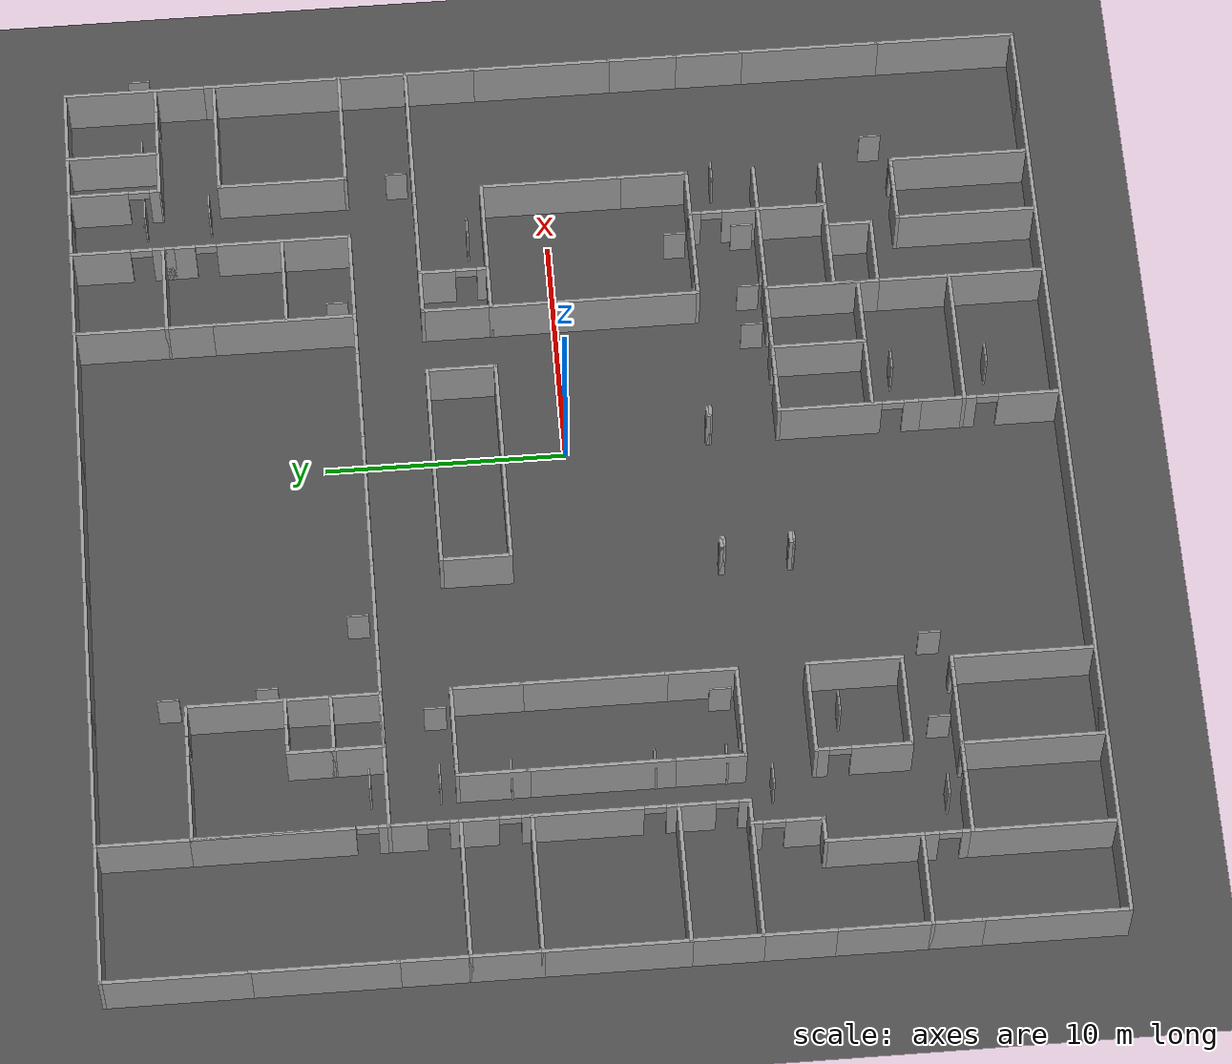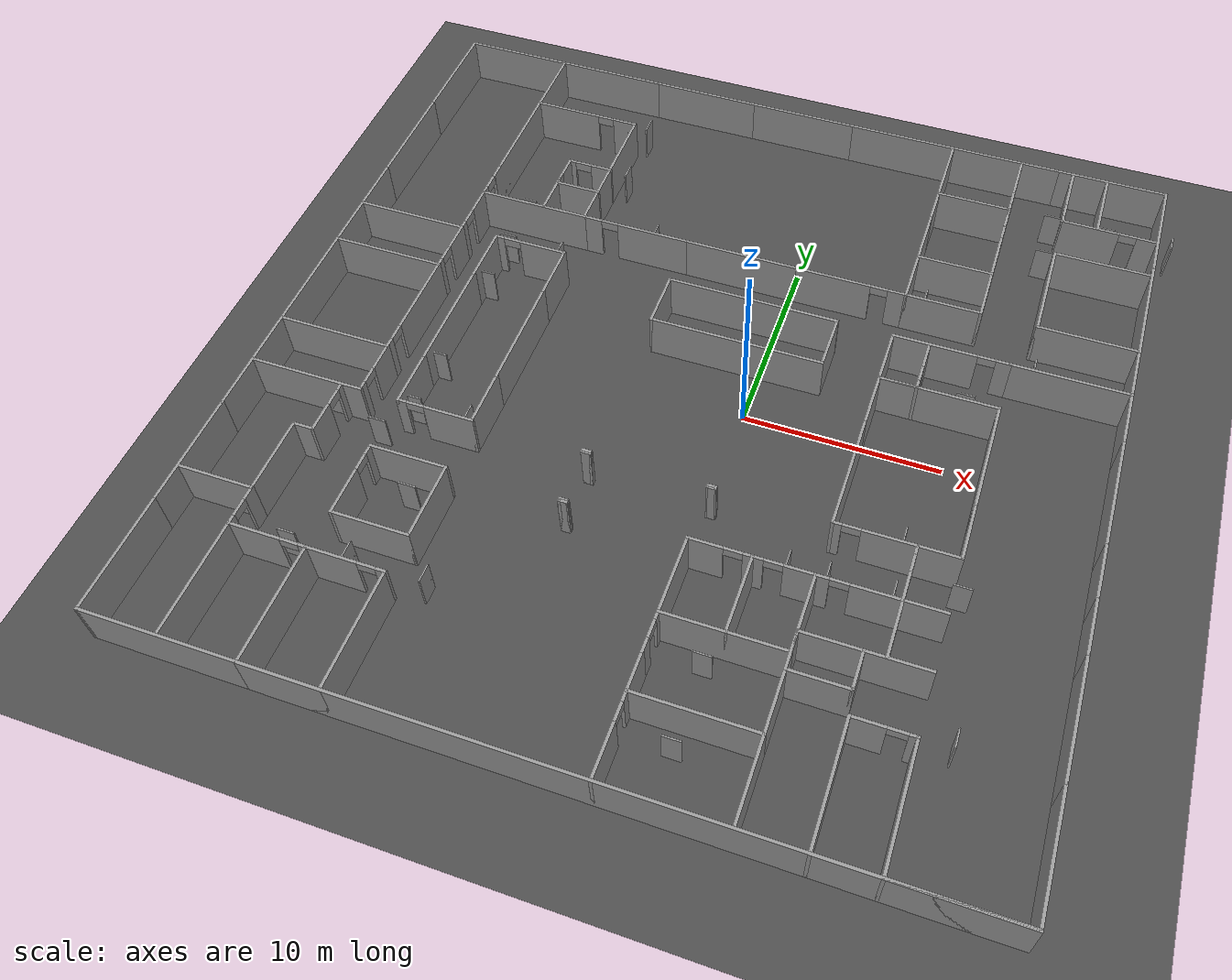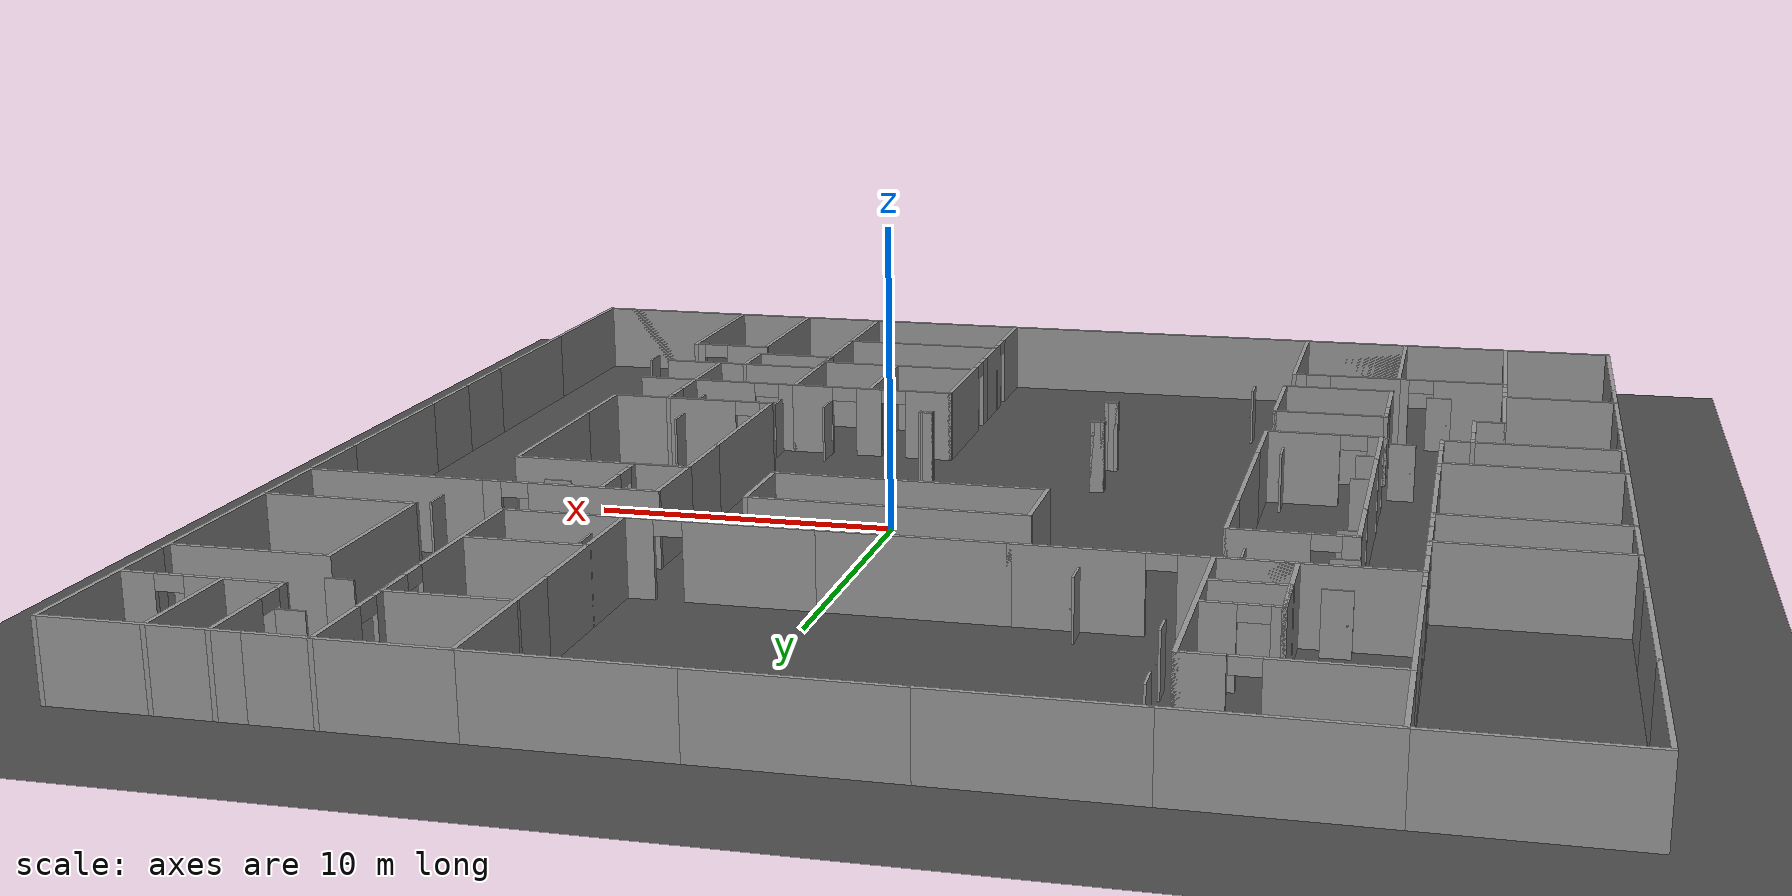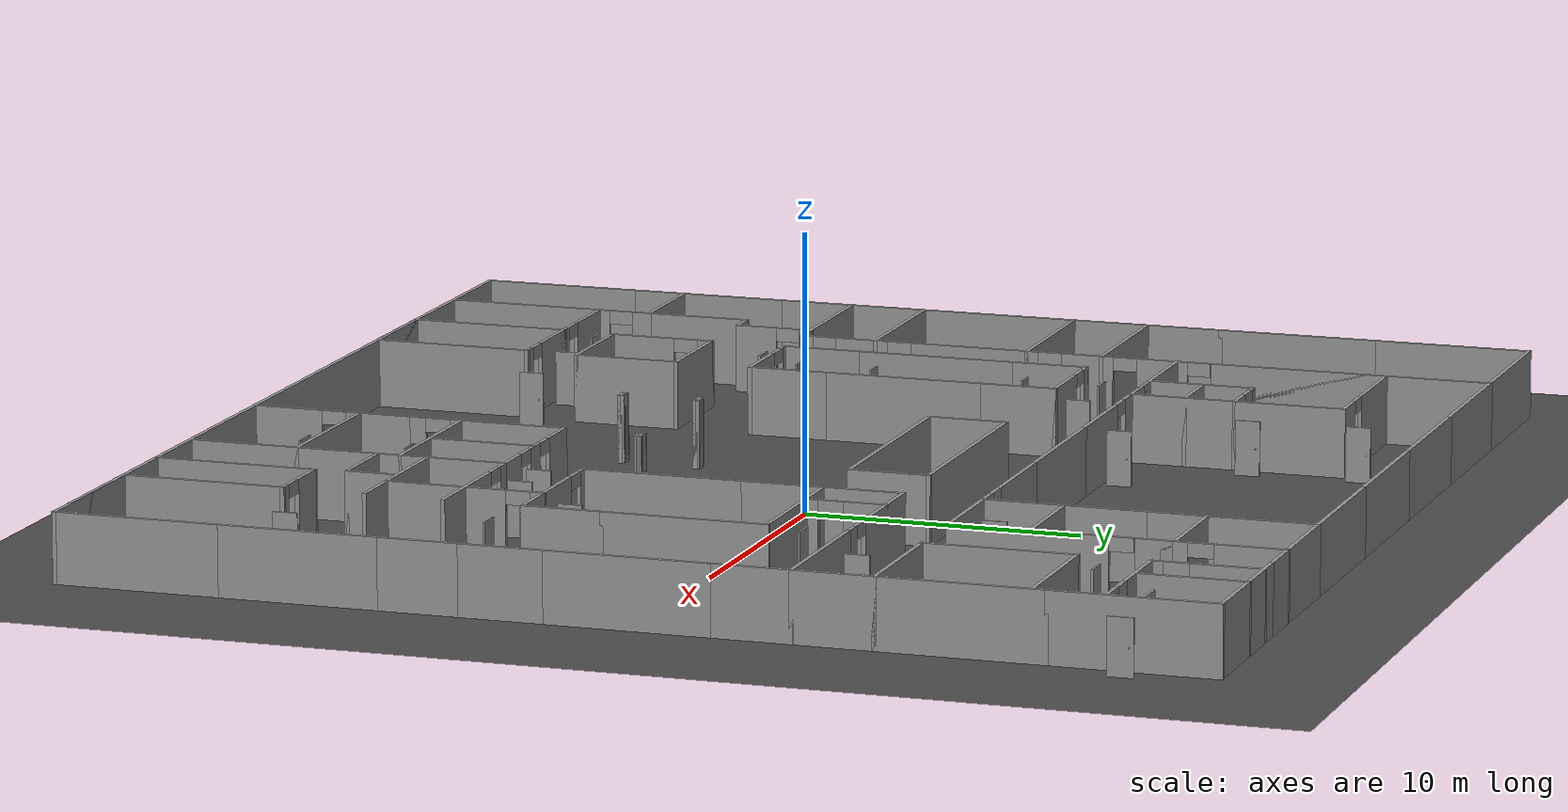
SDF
<sdf version="1.6">
 <world name="default">
  <light name="sun" type="directional">
   <pose>0 0 10 0 -0 0</pose>
   <diffuse>0.8 0.8 0.8 1</diffuse>
   <specular>0.2 0.2 0.2 1</specular>
   <attenuation>
    <range>1000</range>
    <constant>0.9</constant>
    <linear>0.01</linear>
    <quadratic>0.001</quadratic>
   </attenuation>
   <direction>-0.5 0.1 -0.9</direction>
  </light>
  <model name="ground_plane">
   <static>1</static>
   <link name="link">
    <collision name="collision">
     <geometry><plane><normal>0 0 1</normal><size>100 100</size></plane></geometry>
     <surface>
      <contact><collide_bitmask>65535</collide_bitmask></contact>
      <friction><ode><mu>100</mu><mu2>50</mu2></ode></friction>
     </surface>
    </collision>
    <visual name="visual">
     <cast_shadows>0</cast_shadows>
     <geometry><plane><normal>0 0 1</normal><size>100 100</size></plane></geometry>
     <material>
      <ambient>0.3 0.3 0.3 1</ambient>
      <diffuse>0.3 0.3 0.3 1</diffuse>
      <specular>0.01 0.01 0.01 1</specular>
      <emissive>0 0 0 1</emissive>
     </material>
    </visual>
   </link>
  </model>
  <gravity>0 0 -9.8</gravity>
  <magnetic_field>6e-06 2.3e-05 -4.2e-05</magnetic_field>
  <atmosphere type="adiabatic"/>
  <physics name="default_physics" default="0" type="ode">
   <max_step_size>0.001</max_step_size>
   <real_time_factor>0.2</real_time_factor>
   <real_time_update_rate>200</real_time_update_rate>
  </physics>
  <scene><ambient>0.4 0.4 0.4 1</ambient><background>0.7 0.7 0.7 1</background><shadows>1</shadows></scene>
  <spherical_coordinates>
   <surface_model>EARTH_WGS84</surface_model>
   <latitude_deg>0</latitude_deg>
   <longitude_deg>0</longitude_deg>
   <elevation>0</elevation>
   <heading_deg>0</heading_deg>
  </spherical_coordinates>
  <plugin name="puppeteer" filename="libpuppeteer.so">
   <building_name>building</building_name>
   <robot_name>jackal</robot_name>
  </plugin>
  <include><name>building</name><uri>model://myhal_V3</uri></include>
  <model name="CAM_1_-1.000000_-1.000000_8.000000_-2.000000_14.000000">
   <pose>8.000000 -2.000000 14.000000 0.000000 -0.000000 0.000000</pose>
   <static>true</static>
   <link name="CAM_1_-1.000000_-1.000000_8.000000_-2.000000_14.000000_link">
    <sensor name="CAM_1_-1.000000_-1.000000_8.000000_-2.000000_14.000000" type="camera">
     <camera>
      <horizontal_fov>1.047</horizontal_fov>
      <image><width>1920</width><height>1080</height></image>
      <clip><near>0.1</near><far>100</far></clip>
     </camera>
     <plugin name="camera_controller" filename="libcamera_controller.so">
      <filepath>/home/hth/Deep-Collison-Checker/Data/Simulation_v2/simulated_runs/2022-06-30-14-33-47/logs-2022-06-30-14-33-47/videos/CAM_1_-1.000000_-1.000000_8.000000_-2.000000_14.000000/</filepath>
     </plugin>
     <always_on>1</always_on>
     <update_rate>60</update_rate>
    </sensor>
   </link>
  </model>
  <include>
   <name>door_0</name>
   <pose>-10.987250 16.475000 1.000000 0.000000 -0.000000 1.571000</pose>
   <uri>model://simple_door2</uri>
  </include>
  <include>
   <name>door_1</name>
   <pose>-14.624989 9.030960 1.000000 0.000000 -0.000000 -3.141185</pose>
   <uri>model://simple_door2</uri>
  </include>
  <include>
   <name>door_2</name>
   <pose>-10.775058 12.475000 1.000000 0.000000 -0.000000 1.571000</pose>
   <uri>model://simple_door2</uri>
  </include>
  <include>
   <name>door_3</name>
   <pose>-7.761390 8.625000 1.000000 0.000000 -0.000000 1.571000</pose>
   <uri>model://simple_door2</uri>
  </include>
  <include>
   <name>door_4</name>
   <pose>6.935080 8.625000 1.000000 0.000000 -0.000000 1.571000</pose>
   <uri>model://simple_door2</uri>
  </include>
  <include>
   <name>door_5</name>
   <pose>12.624992 14.208450 1.000000 0.000000 -0.000000 -3.141185</pose>
   <uri>model://simple_door2</uri>
  </include>
  <include>
   <name>door_6</name>
   <pose>12.625004 16.932710 1.000000 0.000000 -0.000000 -3.141185</pose>
   <uri>model://simple_door2</uri>
  </include>
  <include>
   <name>door_7</name>
   <pose>18.478948 16.484045 1.000000 0.000000 -0.000000 1.571000</pose>
   <uri>model://simple_door2</uri>
  </include>
  <include>
   <name>door_8</name>
   <pose>15.475004 16.925590 1.000000 0.000000 -0.000000 -3.141185</pose>
   <uri>model://simple_door2</uri>
  </include>
  <include>
   <name>door_9</name>
   <pose>-14.625002 6.214056 1.000000 0.000000 -0.000000 -3.141185</pose>
   <uri>model://simple_door2</uri>
  </include>
  <include>
   <name>door_10</name>
   <pose>-14.625002 3.346128 1.000000 0.000000 -0.000000 -3.141185</pose>
   <uri>model://simple_door2</uri>
  </include>
  <include>
   <name>door_11</name>
   <pose>-14.625007 -2.443840 1.000000 0.000000 -0.000000 -3.141185</pose>
   <uri>model://simple_door2</uri>
  </include>
  <include>
   <name>door_12</name>
   <pose>-14.625002 -5.329808 1.000000 0.000000 -0.000000 -3.141185</pose>
   <uri>model://simple_door2</uri>
  </include>
  <include>
   <name>door_13</name>
   <pose>-15.625002 -7.097462 1.000000 0.000000 -0.000000 -3.141185</pose>
   <uri>model://simple_door2</uri>
  </include>
  <include>
   <name>door_14</name>
   <pose>-14.061730 -14.474920 1.000000 0.000000 -0.000000 1.571000</pose>
   <uri>model://simple_door2</uri>
  </include>
  <include>
   <name>door_15</name>
   <pose>-10.281770 -14.475003 1.000000 0.000000 -0.000000 1.571000</pose>
   <uri>model://simple_door2</uri>
  </include>
  <include>
   <name>door_16</name>
   <pose>-12.150050 5.775003 1.000000 0.000000 -0.000000 1.571000</pose>
   <uri>model://simple_door2</uri>
  </include>
  <include>
   <name>door_17</name>
   <pose>-12.167990 -5.775000 1.000000 0.000000 -0.000000 1.571000</pose>
   <uri>model://simple_door2</uri>
  </include>
  <include>
   <name>door_18</name>
   <pose>-16.625004 -14.047594 1.000000 0.000000 -0.000000 -3.141185</pose>
   <uri>model://simple_door2</uri>
  </include>
  <include>
   <name>door_19</name>
   <pose>-12.624997 -10.048217 1.000000 0.000000 -0.000000 -3.141185</pose>
   <uri>model://simple_door2</uri>
  </include>
  <include>
   <name>door_20</name>
   <pose>13.031310 5.774995 1.000000 0.000000 -0.000000 1.571000</pose>
   <uri>model://simple_door2</uri>
  </include>
  <include>
   <name>door_21</name>
   <pose>10.625002 3.385427 1.000000 0.000000 -0.000000 -3.141185</pose>
   <uri>model://simple_door2</uri>
  </include>
  <include>
   <name>door_22</name>
   <pose>9.193120 -5.774995 1.000000 0.000000 -0.000000 1.571000</pose>
   <uri>model://simple_door2</uri>
  </include>
  <include>
   <name>door_23</name>
   <pose>2.924993 -13.796720 1.000000 0.000000 -0.000000 -3.141185</pose>
   <uri>model://simple_door2</uri>
  </include>
  <include>
   <name>door_24</name>
   <pose>2.925000 -17.742519 1.000000 0.000000 -0.000000 -3.141185</pose>
   <uri>model://simple_door2</uri>
  </include>
  <include>
   <name>door_25</name>
   <pose>4.583714 -8.625000 1.000000 0.000000 -0.000000 1.571000</pose>
   <uri>model://simple_door2</uri>
  </include>
  <include>
   <name>door_26</name>
   <pose>6.431060 -8.625000 1.000000 0.000000 -0.000000 1.571000</pose>
   <uri>model://simple_door2</uri>
  </include>
  <include>
   <name>door_27</name>
   <pose>9.399440 -8.625000 1.000000 0.000000 -0.000000 1.571000</pose>
   <uri>model://simple_door2</uri>
  </include>
  <include>
   <name>door_28</name>
   <pose>13.352706 -14.475002 1.000000 0.000000 -0.000000 1.571000</pose>
   <uri>model://simple_door2</uri>
  </include>
  <include>
   <name>door_29</name>
   <pose>12.624998 -7.129598 1.000000 0.000000 -0.000000 -3.141185</pose>
   <uri>model://simple_door2</uri>
  </include>
 </world>
</sdf>

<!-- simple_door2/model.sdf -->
<sdf version='1.6'>
  <model name='simple_door2'>
    <link name='link'>
      <self_collide>0</self_collide>
      <enable_wind>0</enable_wind>
      <kinematic>0</kinematic>
      <pose frame=''>0.45 0 -0 0 -0 0</pose>
      <gravity>0</gravity>
      <visual name='visual'>
        <geometry>
          <box>
            <size>0.9 0.075 2</size>
          </box>
        </geometry>
        <material>
          <script>
            <name>Gazebo/Grey</name>
            <uri>file://media/materials/scripts/gazebo.material</uri>
          </script>
          <shader type='pixel'>
            <normal_map>__default__</normal_map>
          </shader>
          <ambient>0.3 0.3 0.3 1</ambient>
          <diffuse>0.7 0.7 0.7 1</diffuse>
          <specular>0.01 0.01 0.01 1</specular>
          <emissive>0 0 0 1</emissive>
        </material>
        <pose frame=''>0 0 0 0 -0 0</pose>
        <transparency>0</transparency>
        <cast_shadows>1</cast_shadows>
      </visual>
      <collision name='collision'>
        <laser_retro>0</laser_retro>
        <max_contacts>10</max_contacts>
        <pose frame=''>0 0 0 0 -0 0</pose>
        <geometry>
          <box>
            <size>0.9 0.075 2</size>
          </box>
        </geometry>
      </collision>

    </link>
    <link name='link_2'>
      <pose frame=''>0.750001 -0.0525 -0 1.57 6e-06 0</pose>
      <gravity>0</gravity>
      <self_collide>0</self_collide>
      <kinematic>0</kinematic>
      <enable_wind>0</enable_wind>
      <visual name='visual'>
        <pose frame=''>0 0 0 0 -0 0</pose>
        <geometry>
          <cylinder>
            <radius>0.02</radius>
            <length>0.03</length>
          </cylinder>
        </geometry>
        <material>
          <lighting>1</lighting>
          <script>
            <uri>file://media/materials/scripts/gazebo.material</uri>
            <name>Gazebo/Grey</name>
          </script>
          <shader type='pixel'>
            <normal_map>__default__</normal_map>
          </shader>
          <ambient>0.3 0.3 0.3 1</ambient>
          <diffuse>0.7 0.7 0.7 1</diffuse>
          <specular>0.01 0.01 0.01 1</specular>
          <emissive>0 0 0 1</emissive>
        </material>
        <transparency>0</transparency>
        <cast_shadows>1</cast_shadows>
      </visual>
       <collision name='collision'>
			<laser_retro>0</laser_retro>
			<max_contacts>10</max_contacts>
			<pose frame=''>0 0 0 0 -0 0</pose>
			<geometry>
			  <cylinder>
				<radius>0.02</radius>
				<length>0.03</length>
			  </cylinder>
			</geometry>
        </collision>

    </link>
    <link name='link_3'>
      <pose frame=''>0.750001 -0.0825 2.4e-05 -6.1e-05 6e-06 0.010426</pose>
      <gravity>0</gravity>
      <self_collide>0</self_collide>
      <kinematic>0</kinematic>
      <enable_wind>0</enable_wind>
      <visual name='visual'>
        <pose frame=''>0 0 0 0 -0 0</pose>
        <geometry>
          <sphere>
            <radius>0.025</radius>
          </sphere>
        </geometry>
        <material>
          <lighting>1</lighting>
          <script>
            <uri>file://media/materials/scripts/gazebo.material</uri>
            <name>Gazebo/Grey</name>
          </script>
          <shader type='pixel'>
            <normal_map>__default__</normal_map>
          </shader>
          <ambient>0.3 0.3 0.3 1</ambient>
          <diffuse>0.7 0.7 0.7 1</diffuse>
          <specular>0.01 0.01 0.01 1</specular>
          <emissive>0 0 0 1</emissive>
        </material>
        <transparency>0</transparency>
        <cast_shadows>1</cast_shadows>
      </visual>
      <collision name='collision'>
        <laser_retro>0</laser_retro>
        <max_contacts>10</max_contacts>
        <pose frame=''>0 0 0 0 -0 0</pose>
        <geometry>
          <sphere>
            <radius>0.025</radius>
          </sphere>
        </geometry>
       </collision>
    </link>
    <joint name='link_2_JOINT_3' type='fixed'>
      <parent>link_2</parent>
      <child>link_3</child>
      <pose frame=''>0 0 0 0 -0 0</pose>
      <physics>
        <ode>
          <limit>
            <cfm>0</cfm>
            <erp>0.2</erp>
          </limit>
          <suspension>
            <cfm>0</cfm>
            <erp>0.2</erp>
          </suspension>
        </ode>
      </physics>
    </joint>
    <joint name='link_JOINT_2' type='revolute'>
      <parent>link</parent>
      <child>link_2</child>
      <pose frame=''>0 0 0 0 -0 0</pose>
      <axis>
        <xyz>1 0 0</xyz>
        <use_parent_model_frame>0</use_parent_model_frame>
        <limit>
          <lower>-1.79769e+308</lower>
          <upper>1.79769e+308</upper>
          <effort>-1</effort>
          <velocity>-1</velocity>
        </limit>
        <dynamics>
          <spring_reference>0</spring_reference>
          <spring_stiffness>0</spring_stiffness>
          <damping>0</damping>
        </dynamics>
      </axis>
      <physics>
        <ode>
          <limit>
            <cfm>0</cfm>
            <erp>0.2</erp>
          </limit>
          <suspension>
            <cfm>0</cfm>
            <erp>0.2</erp>
          </suspension>
        </ode>
      </physics>
    </joint>
    <static>0</static>
    <allow_auto_disable>1</allow_auto_disable>
  </model>
</sdf>
